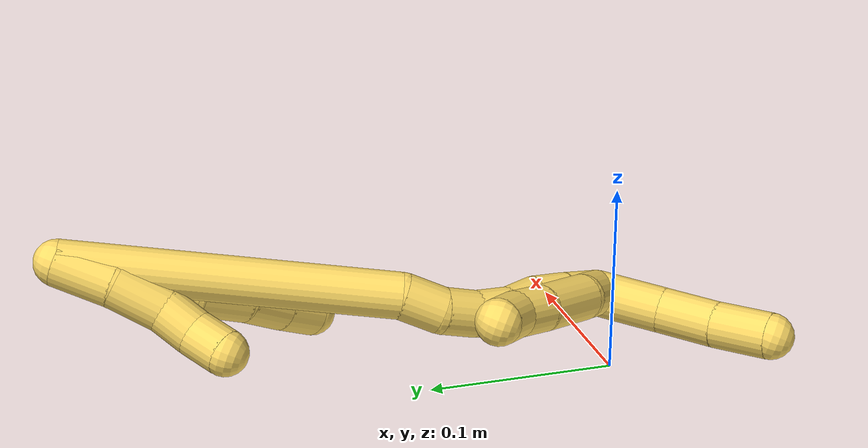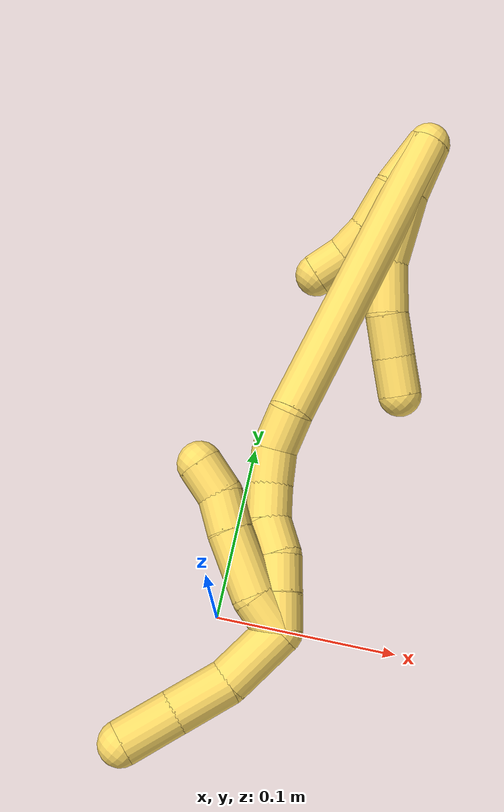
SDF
<sdf version="1.7">
 <world name="default">
  <model name="5">
   <static>0</static>
   <link name="5">
    <collision name="collision-cylinder-e_1_2_8">
     <pose>0.000635 -0.005181 -0.01552 2.81939 0.038787 0.237582</pose>
     <geometry><cylinder><radius>0.0125</radius><length>0.032749</length></cylinder></geometry>
     <surface>
      <friction><ode><mu>1.16</mu><mu2>1.16</mu2><slip1>0</slip1><slip2>0</slip2></ode></friction>
      <contact><ode><kp>1e+06</kp><kd>1</kd><max_vel>0</max_vel><min_depth>0.001</min_depth></ode></contact>
     </surface>
    </collision>
    <visual name="visual-cylinder-e_1_2_8">
     <pose>0.000635 -0.005181 -0.01552 2.81939 0.038787 0.237582</pose>
     <geometry><cylinder><radius>0.0125</radius><length>0.032749</length></cylinder></geometry>
     <material><ambient>1 0.858824 0.4 1</ambient></material>
    </visual>
    <collision name="collision-cylinder-e_2_8_9">
     <pose>0.006474 -0.016543 -0.049831 2.82379 0.257251 1.35811</pose>
     <geometry><cylinder><radius>0.0125</radius><length>0.040907</length></cylinder></geometry>
     <surface>
      <friction><ode><mu>1.16</mu><mu2>1.16</mu2><slip1>0</slip1><slip2>0</slip2></ode></friction>
      <contact><ode><kp>1e+06</kp><kd>1</kd><max_vel>0</max_vel><min_depth>0.001</min_depth></ode></contact>
     </surface>
    </collision>
    <visual name="visual-cylinder-e_2_8_9">
     <pose>0.006474 -0.016543 -0.049831 2.82379 0.257251 1.35811</pose>
     <geometry><cylinder><radius>0.0125</radius><length>0.040907</length></cylinder></geometry>
     <material><ambient>1 0.858824 0.4 1</ambient></material>
    </visual>
    <collision name="collision-cylinder-e_3_9_10">
     <pose>0.017271 -0.030422 -0.079689 2.53395 0.393246 1.132</pose>
     <geometry><cylinder><radius>0.0125</radius><length>0.029192</length></cylinder></geometry>
     <surface>
      <friction><ode><mu>1.16</mu><mu2>1.16</mu2><slip1>0</slip1><slip2>0</slip2></ode></friction>
      <contact><ode><kp>1e+06</kp><kd>1</kd><max_vel>0</max_vel><min_depth>0.001</min_depth></ode></contact>
     </surface>
    </collision>
    <visual name="visual-cylinder-e_3_9_10">
     <pose>0.017271 -0.030422 -0.079689 2.53395 0.393246 1.132</pose>
     <geometry><cylinder><radius>0.0125</radius><length>0.029192</length></cylinder></geometry>
     <material><ambient>1 0.858824 0.4 1</ambient></material>
    </visual>
    <collision name="collision-cylinder-e_4_10_11">
     <pose>0.029569 -0.044636 -0.098919 2.46772 0.570733 1.39439</pose>
     <geometry><cylinder><radius>0.0125</radius><length>0.024822</length></cylinder></geometry>
     <surface>
      <friction><ode><mu>1.16</mu><mu2>1.16</mu2><slip1>0</slip1><slip2>0</slip2></ode></friction>
      <contact><ode><kp>1e+06</kp><kd>1</kd><max_vel>0</max_vel><min_depth>0.001</min_depth></ode></contact>
     </surface>
    </collision>
    <visual name="visual-cylinder-e_4_10_11">
     <pose>0.029569 -0.044636 -0.098919 2.46772 0.570733 1.39439</pose>
     <geometry><cylinder><radius>0.0125</radius><length>0.024822</length></cylinder></geometry>
     <material><ambient>1 0.858824 0.4 1</ambient></material>
    </visual>
    <collision name="collision-cylinder-e_5_11_6">
     <pose>0.042033 -0.057381 -0.114339 2.43252 0.542002 1.28771</pose>
     <geometry><cylinder><radius>0.0125</radius><length>0.022329</length></cylinder></geometry>
     <surface>
      <friction><ode><mu>1.16</mu><mu2>1.16</mu2><slip1>0</slip1><slip2>0</slip2></ode></friction>
      <contact><ode><kp>1e+06</kp><kd>1</kd><max_vel>0</max_vel><min_depth>0.001</min_depth></ode></contact>
     </surface>
    </collision>
    <visual name="visual-cylinder-e_5_11_6">
     <pose>0.042033 -0.057381 -0.114339 2.43252 0.542002 1.28771</pose>
     <geometry><cylinder><radius>0.0125</radius><length>0.022329</length></cylinder></geometry>
     <material><ambient>1 0.858824 0.4 1</ambient></material>
    </visual>
    <collision name="collision-cylinder-e_1_2_12">
     <pose>0.000253 -0.000469 -0.015768 3.11184 0.016066 0.990115</pose>
     <geometry><cylinder><radius>0.0125</radius><length>0.031555</length></cylinder></geometry>
     <surface>
      <friction><ode><mu>1.16</mu><mu2>1.16</mu2><slip1>0</slip1><slip2>0</slip2></ode></friction>
      <contact><ode><kp>1e+06</kp><kd>1</kd><max_vel>0</max_vel><min_depth>0.001</min_depth></ode></contact>
     </surface>
    </collision>
    <visual name="visual-cylinder-e_1_2_12">
     <pose>0.000253 -0.000469 -0.015768 3.11184 0.016066 0.990115</pose>
     <geometry><cylinder><radius>0.0125</radius><length>0.031555</length></cylinder></geometry>
     <material><ambient>1 0.858824 0.4 1</ambient></material>
    </visual>
    <collision name="collision-cylinder-e_2_12_13">
     <pose>0.003302 -0.001362 -0.045419 3.11113 0.198574 2.83812</pose>
     <geometry><cylinder><radius>0.0125</radius><length>0.028334</length></cylinder></geometry>
     <surface>
      <friction><ode><mu>1.16</mu><mu2>1.16</mu2><slip1>0</slip1><slip2>0</slip2></ode></friction>
      <contact><ode><kp>1e+06</kp><kd>1</kd><max_vel>0</max_vel><min_depth>0.001</min_depth></ode></contact>
     </surface>
    </collision>
    <visual name="visual-cylinder-e_2_12_13">
     <pose>0.003302 -0.001362 -0.045419 3.11113 0.198574 2.83812</pose>
     <geometry><cylinder><radius>0.0125</radius><length>0.028334</length></cylinder></geometry>
     <material><ambient>1 0.858824 0.4 1</ambient></material>
    </visual>
    <collision name="collision-cylinder-e_3_13_14">
     <pose>0.007519 0.000533 -0.068958 -2.90607 0.142286 -1.08429</pose>
     <geometry><cylinder><radius>0.0125</radius><length>0.020064</length></cylinder></geometry>
     <surface>
      <friction><ode><mu>1.16</mu><mu2>1.16</mu2><slip1>0</slip1><slip2>0</slip2></ode></friction>
      <contact><ode><kp>1e+06</kp><kd>1</kd><max_vel>0</max_vel><min_depth>0.001</min_depth></ode></contact>
     </surface>
    </collision>
    <visual name="visual-cylinder-e_3_13_14">
     <pose>0.007519 0.000533 -0.068958 -2.90607 0.142286 -1.08429</pose>
     <geometry><cylinder><radius>0.0125</radius><length>0.020064</length></cylinder></geometry>
     <material><ambient>1 0.858824 0.4 1</ambient></material>
    </visual>
    <collision name="collision-cylinder-e_4_14_5">
     <pose>0.007729 0.005739 -0.088136 -2.84702 -0.121245 0.776679</pose>
     <geometry><cylinder><radius>0.0125</radius><length>0.020047</length></cylinder></geometry>
     <surface>
      <friction><ode><mu>1.16</mu><mu2>1.16</mu2><slip1>0</slip1><slip2>0</slip2></ode></friction>
      <contact><ode><kp>1e+06</kp><kd>1</kd><max_vel>0</max_vel><min_depth>0.001</min_depth></ode></contact>
     </surface>
    </collision>
    <visual name="visual-cylinder-e_4_14_5">
     <pose>0.007729 0.005739 -0.088136 -2.84702 -0.121245 0.776679</pose>
     <geometry><cylinder><radius>0.0125</radius><length>0.020047</length></cylinder></geometry>
     <material><ambient>1 0.858824 0.4 1</ambient></material>
    </visual>
    <collision name="collision-cylinder-e_1_2_15">
     <pose>-0.003896 -0.027531 -0.084296 2.82591 -0.04391 -0.274194</pose>
     <geometry><cylinder><radius>0.0125</radius><length>0.177526</length></cylinder></geometry>
     <surface>
      <friction><ode><mu>1.16</mu><mu2>1.16</mu2><slip1>0</slip1><slip2>0</slip2></ode></friction>
      <contact><ode><kp>1e+06</kp><kd>1</kd><max_vel>0</max_vel><min_depth>0.001</min_depth></ode></contact>
     </surface>
    </collision>
    <visual name="visual-cylinder-e_1_2_15">
     <pose>-0.003896 -0.027531 -0.084296 2.82591 -0.04391 -0.274194</pose>
     <geometry><cylinder><radius>0.0125</radius><length>0.177526</length></cylinder></geometry>
     <material><ambient>1 0.858824 0.4 1</ambient></material>
    </visual>
    <collision name="collision-cylinder-e_2_15_16">
     <pose>-0.005343 -0.057101 -0.179334 2.95405 0.22043 1.73278</pose>
     <geometry><cylinder><radius>0.0125</radius><length>0.022412</length></cylinder></geometry>
     <surface>
      <friction><ode><mu>1.16</mu><mu2>1.16</mu2><slip1>0</slip1><slip2>0</slip2></ode></friction>
      <contact><ode><kp>1e+06</kp><kd>1</kd><max_vel>0</max_vel><min_depth>0.001</min_depth></ode></contact>
     </surface>
    </collision>
    <visual name="visual-cylinder-e_2_15_16">
     <pose>-0.005343 -0.057101 -0.179334 2.95405 0.22043 1.73278</pose>
     <geometry><cylinder><radius>0.0125</radius><length>0.022412</length></cylinder></geometry>
     <material><ambient>1 0.858824 0.4 1</ambient></material>
    </visual>
    <collision name="collision-cylinder-e_3_16_17">
     <pose>-0.000389 -0.064096 -0.198405 2.60471 0.252779 0.865451</pose>
     <geometry><cylinder><radius>0.0125</radius><length>0.020018</length></cylinder></geometry>
     <surface>
      <friction><ode><mu>1.16</mu><mu2>1.16</mu2><slip1>0</slip1><slip2>0</slip2></ode></friction>
      <contact><ode><kp>1e+06</kp><kd>1</kd><max_vel>0</max_vel><min_depth>0.001</min_depth></ode></contact>
     </surface>
    </collision>
    <visual name="visual-cylinder-e_3_16_17">
     <pose>-0.000389 -0.064096 -0.198405 2.60471 0.252779 0.865451</pose>
     <geometry><cylinder><radius>0.0125</radius><length>0.020018</length></cylinder></geometry>
     <material><ambient>1 0.858824 0.4 1</ambient></material>
    </visual>
    <collision name="collision-cylinder-e_4_17_18">
     <pose>0.003544 -0.07539 -0.214345 2.44733 0.143319 0.39174</pose>
     <geometry><cylinder><radius>0.0125</radius><length>0.020017</length></cylinder></geometry>
     <surface>
      <friction><ode><mu>1.16</mu><mu2>1.16</mu2><slip1>0</slip1><slip2>0</slip2></ode></friction>
      <contact><ode><kp>1e+06</kp><kd>1</kd><max_vel>0</max_vel><min_depth>0.001</min_depth></ode></contact>
     </surface>
    </collision>
    <visual name="visual-cylinder-e_4_17_18">
     <pose>0.003544 -0.07539 -0.214345 2.44733 0.143319 0.39174</pose>
     <geometry><cylinder><radius>0.0125</radius><length>0.020017</length></cylinder></geometry>
     <material><ambient>1 0.858824 0.4 1</ambient></material>
    </visual>
    <collision name="collision-cylinder-e_5_18_19">
     <pose>0.007323 -0.090083 -0.226931 2.10768 0.237167 0.413149</pose>
     <geometry><cylinder><radius>0.0125</radius><length>0.020005</length></cylinder></geometry>
     <surface>
      <friction><ode><mu>1.16</mu><mu2>1.16</mu2><slip1>0</slip1><slip2>0</slip2></ode></friction>
      <contact><ode><kp>1e+06</kp><kd>1</kd><max_vel>0</max_vel><min_depth>0.001</min_depth></ode></contact>
     </surface>
    </collision>
    <visual name="visual-cylinder-e_5_18_19">
     <pose>0.007323 -0.090083 -0.226931 2.10768 0.237167 0.413149</pose>
     <geometry><cylinder><radius>0.0125</radius><length>0.020005</length></cylinder></geometry>
     <material><ambient>1 0.858824 0.4 1</ambient></material>
    </visual>
    <collision name="collision-cylinder-e_6_19_20">
     <pose>0.011532 -0.105023 -0.239197 2.40713 0.186908 0.477984</pose>
     <geometry><cylinder><radius>0.0125</radius><length>0.020003</length></cylinder></geometry>
     <surface>
      <friction><ode><mu>1.16</mu><mu2>1.16</mu2><slip1>0</slip1><slip2>0</slip2></ode></friction>
      <contact><ode><kp>1e+06</kp><kd>1</kd><max_vel>0</max_vel><min_depth>0.001</min_depth></ode></contact>
     </surface>
    </collision>
    <visual name="visual-cylinder-e_6_19_20">
     <pose>0.011532 -0.105023 -0.239197 2.40713 0.186908 0.477984</pose>
     <geometry><cylinder><radius>0.0125</radius><length>0.020003</length></cylinder></geometry>
     <material><ambient>1 0.858824 0.4 1</ambient></material>
    </visual>
    <collision name="collision-cylinder-e_7_20_1">
     <pose>0.015498 -0.117955 -0.25394 2.43604 0.21216 0.563052</pose>
     <geometry><cylinder><radius>0.0125</radius><length>0.020019</length></cylinder></geometry>
     <surface>
      <friction><ode><mu>1.16</mu><mu2>1.16</mu2><slip1>0</slip1><slip2>0</slip2></ode></friction>
      <contact><ode><kp>1e+06</kp><kd>1</kd><max_vel>0</max_vel><min_depth>0.001</min_depth></ode></contact>
     </surface>
    </collision>
    <visual name="visual-cylinder-e_7_20_1">
     <pose>0.015498 -0.117955 -0.25394 2.43604 0.21216 0.563052</pose>
     <geometry><cylinder><radius>0.0125</radius><length>0.020019</length></cylinder></geometry>
     <material><ambient>1 0.858824 0.4 1</ambient></material>
    </visual>
    <collision name="collision-cylinder-e_1_1_21">
     <pose>0.014115 -0.124151 -0.279755 -3.13349 -0.187795 3.05564</pose>
     <geometry><cylinder><radius>0.0125</radius><length>0.03739</length></cylinder></geometry>
     <surface>
      <friction><ode><mu>1.16</mu><mu2>1.16</mu2><slip1>0</slip1><slip2>0</slip2></ode></friction>
      <contact><ode><kp>1e+06</kp><kd>1</kd><max_vel>0</max_vel><min_depth>0.001</min_depth></ode></contact>
     </surface>
    </collision>
    <visual name="visual-cylinder-e_1_1_21">
     <pose>0.014115 -0.124151 -0.279755 -3.13349 -0.187795 3.05564</pose>
     <geometry><cylinder><radius>0.0125</radius><length>0.03739</length></cylinder></geometry>
     <material><ambient>1 0.858824 0.4 1</ambient></material>
    </visual>
    <collision name="collision-cylinder-e_2_21_22">
     <pose>0.004758 -0.121359 -0.312643 -2.96154 -0.378291 2.26034</pose>
     <geometry><cylinder><radius>0.0125</radius><length>0.03177</length></cylinder></geometry>
     <surface>
      <friction><ode><mu>1.16</mu><mu2>1.16</mu2><slip1>0</slip1><slip2>0</slip2></ode></friction>
      <contact><ode><kp>1e+06</kp><kd>1</kd><max_vel>0</max_vel><min_depth>0.001</min_depth></ode></contact>
     </surface>
    </collision>
    <visual name="visual-cylinder-e_2_21_22">
     <pose>0.004758 -0.121359 -0.312643 -2.96154 -0.378291 2.26034</pose>
     <geometry><cylinder><radius>0.0125</radius><length>0.03177</length></cylinder></geometry>
     <material><ambient>1 0.858824 0.4 1</ambient></material>
    </visual>
    <collision name="collision-cylinder-e_3_22_4">
     <pose>-0.007437 -0.116603 -0.341069 -2.99081 -0.422877 2.46484</pose>
     <geometry><cylinder><radius>0.0125</radius><length>0.03084</length></cylinder></geometry>
     <surface>
      <friction><ode><mu>1.16</mu><mu2>1.16</mu2><slip1>0</slip1><slip2>0</slip2></ode></friction>
      <contact><ode><kp>1e+06</kp><kd>1</kd><max_vel>0</max_vel><min_depth>0.001</min_depth></ode></contact>
     </surface>
    </collision>
    <visual name="visual-cylinder-e_3_22_4">
     <pose>-0.007437 -0.116603 -0.341069 -2.99081 -0.422877 2.46484</pose>
     <geometry><cylinder><radius>0.0125</radius><length>0.03084</length></cylinder></geometry>
     <material><ambient>1 0.858824 0.4 1</ambient></material>
    </visual>
    <collision name="collision-cylinder-e_1_1_23">
     <pose>0.010844 -0.11575 -0.258409 -1.23546 -0.64142 0.463535</pose>
     <geometry><cylinder><radius>0.0125</radius><length>0.022601</length></cylinder></geometry>
     <surface>
      <friction><ode><mu>1.16</mu><mu2>1.16</mu2><slip1>0</slip1><slip2>0</slip2></ode></friction>
      <contact><ode><kp>1e+06</kp><kd>1</kd><max_vel>0</max_vel><min_depth>0.001</min_depth></ode></contact>
     </surface>
    </collision>
    <visual name="visual-cylinder-e_1_1_23">
     <pose>0.010844 -0.11575 -0.258409 -1.23546 -0.64142 0.463535</pose>
     <geometry><cylinder><radius>0.0125</radius><length>0.022601</length></cylinder></geometry>
     <material><ambient>1 0.858824 0.4 1</ambient></material>
    </visual>
    <collision name="collision-cylinder-e_2_23_24">
     <pose>-0.003392 -0.092882 -0.246805 -1.02865 -0.420527 0.240026</pose>
     <geometry><cylinder><radius>0.0125</radius><length>0.036621</length></cylinder></geometry>
     <surface>
      <friction><ode><mu>1.16</mu><mu2>1.16</mu2><slip1>0</slip1><slip2>0</slip2></ode></friction>
      <contact><ode><kp>1e+06</kp><kd>1</kd><max_vel>0</max_vel><min_depth>0.001</min_depth></ode></contact>
     </surface>
    </collision>
    <visual name="visual-cylinder-e_2_23_24">
     <pose>-0.003392 -0.092882 -0.246805 -1.02865 -0.420527 0.240026</pose>
     <geometry><cylinder><radius>0.0125</radius><length>0.036621</length></cylinder></geometry>
     <material><ambient>1 0.858824 0.4 1</ambient></material>
    </visual>
    <collision name="collision-cylinder-e_3_24_25">
     <pose>-0.01449 -0.070714 -0.232491 -0.943591 -0.357583 0.183897</pose>
     <geometry><cylinder><radius>0.0125</radius><length>0.0207</length></cylinder></geometry>
     <surface>
      <friction><ode><mu>1.16</mu><mu2>1.16</mu2><slip1>0</slip1><slip2>0</slip2></ode></friction>
      <contact><ode><kp>1e+06</kp><kd>1</kd><max_vel>0</max_vel><min_depth>0.001</min_depth></ode></contact>
     </surface>
    </collision>
    <visual name="visual-cylinder-e_3_24_25">
     <pose>-0.01449 -0.070714 -0.232491 -0.943591 -0.357583 0.183897</pose>
     <geometry><cylinder><radius>0.0125</radius><length>0.0207</length></cylinder></geometry>
     <material><ambient>1 0.858824 0.4 1</ambient></material>
    </visual>
    <collision name="collision-cylinder-e_4_25_3">
     <pose>-0.023351 -0.054762 -0.224024 -1.24067 -0.548929 0.397018</pose>
     <geometry><cylinder><radius>0.0125</radius><length>0.020079</length></cylinder></geometry>
     <surface>
      <friction><ode><mu>1.16</mu><mu2>1.16</mu2><slip1>0</slip1><slip2>0</slip2></ode></friction>
      <contact><ode><kp>1e+06</kp><kd>1</kd><max_vel>0</max_vel><min_depth>0.001</min_depth></ode></contact>
     </surface>
    </collision>
    <visual name="visual-cylinder-e_4_25_3">
     <pose>-0.023351 -0.054762 -0.224024 -1.24067 -0.548929 0.397018</pose>
     <geometry><cylinder><radius>0.0125</radius><length>0.020079</length></cylinder></geometry>
     <material><ambient>1 0.858824 0.4 1</ambient></material>
    </visual>
    <collision name="collision-sphere-3">
     <pose>-0.028589 -0.04666 -0.221248 0 -0 0</pose>
     <geometry><sphere><radius>0.0125</radius></sphere></geometry>
     <surface>
      <friction><ode><mu>1.16</mu><mu2>1.16</mu2><slip1>0</slip1><slip2>0</slip2></ode></friction>
      <contact><ode><kp>1e+06</kp><kd>1</kd><max_vel>0</max_vel><min_depth>0.001</min_depth></ode></contact>
     </surface>
    </collision>
    <visual name="visual-sphere-3">
     <pose>-0.028589 -0.04666 -0.221248 0 -0 0</pose>
     <geometry><sphere><radius>0.0125</radius></sphere></geometry>
     <material><ambient>1 0.858824 0.4 1</ambient></material>
    </visual>
    <collision name="collision-sphere-25">
     <pose>-0.018112 -0.062864 -0.226801 0 -0 0</pose>
     <geometry><sphere><radius>0.0125</radius></sphere></geometry>
     <surface>
      <friction><ode><mu>1.16</mu><mu2>1.16</mu2><slip1>0</slip1><slip2>0</slip2></ode></friction>
      <contact><ode><kp>1e+06</kp><kd>1</kd><max_vel>0</max_vel><min_depth>0.001</min_depth></ode></contact>
     </surface>
    </collision>
    <visual name="visual-sphere-25">
     <pose>-0.018112 -0.062864 -0.226801 0 -0 0</pose>
     <geometry><sphere><radius>0.0125</radius></sphere></geometry>
     <material><ambient>1 0.858824 0.4 1</ambient></material>
    </visual>
    <collision name="collision-sphere-24">
     <pose>-0.010867 -0.078564 -0.238181 0 -0 0</pose>
     <geometry><sphere><radius>0.0125</radius></sphere></geometry>
     <surface>
      <friction><ode><mu>1.16</mu><mu2>1.16</mu2><slip1>0</slip1><slip2>0</slip2></ode></friction>
      <contact><ode><kp>1e+06</kp><kd>1</kd><max_vel>0</max_vel><min_depth>0.001</min_depth></ode></contact>
     </surface>
    </collision>
    <visual name="visual-sphere-24">
     <pose>-0.010867 -0.078564 -0.238181 0 -0 0</pose>
     <geometry><sphere><radius>0.0125</radius></sphere></geometry>
     <material><ambient>1 0.858824 0.4 1</ambient></material>
    </visual>
    <collision name="collision-sphere-23">
     <pose>0.004083 -0.1072 -0.25543 0 -0 0</pose>
     <geometry><sphere><radius>0.0125</radius></sphere></geometry>
     <surface>
      <friction><ode><mu>1.16</mu><mu2>1.16</mu2><slip1>0</slip1><slip2>0</slip2></ode></friction>
      <contact><ode><kp>1e+06</kp><kd>1</kd><max_vel>0</max_vel><min_depth>0.001</min_depth></ode></contact>
     </surface>
    </collision>
    <visual name="visual-sphere-23">
     <pose>0.004083 -0.1072 -0.25543 0 -0 0</pose>
     <geometry><sphere><radius>0.0125</radius></sphere></geometry>
     <material><ambient>1 0.858824 0.4 1</ambient></material>
    </visual>
    <collision name="collision-sphere-4">
     <pose>-0.013765 -0.114491 -0.354971 0 -0 0</pose>
     <geometry><sphere><radius>0.0125</radius></sphere></geometry>
     <surface>
      <friction><ode><mu>1.16</mu><mu2>1.16</mu2><slip1>0</slip1><slip2>0</slip2></ode></friction>
      <contact><ode><kp>1e+06</kp><kd>1</kd><max_vel>0</max_vel><min_depth>0.001</min_depth></ode></contact>
     </surface>
    </collision>
    <visual name="visual-sphere-4">
     <pose>-0.013765 -0.114491 -0.354971 0 -0 0</pose>
     <geometry><sphere><radius>0.0125</radius></sphere></geometry>
     <material><ambient>1 0.858824 0.4 1</ambient></material>
    </visual>
    <collision name="collision-sphere-22">
     <pose>-0.001108 -0.118716 -0.327167 0 -0 0</pose>
     <geometry><sphere><radius>0.0125</radius></sphere></geometry>
     <surface>
      <friction><ode><mu>1.16</mu><mu2>1.16</mu2><slip1>0</slip1><slip2>0</slip2></ode></friction>
      <contact><ode><kp>1e+06</kp><kd>1</kd><max_vel>0</max_vel><min_depth>0.001</min_depth></ode></contact>
     </surface>
    </collision>
    <visual name="visual-sphere-22">
     <pose>-0.001108 -0.118716 -0.327167 0 -0 0</pose>
     <geometry><sphere><radius>0.0125</radius></sphere></geometry>
     <material><ambient>1 0.858824 0.4 1</ambient></material>
    </visual>
    <collision name="collision-sphere-21">
     <pose>0.010625 -0.124003 -0.29812 0 -0 0</pose>
     <geometry><sphere><radius>0.0125</radius></sphere></geometry>
     <surface>
      <friction><ode><mu>1.16</mu><mu2>1.16</mu2><slip1>0</slip1><slip2>0</slip2></ode></friction>
      <contact><ode><kp>1e+06</kp><kd>1</kd><max_vel>0</max_vel><min_depth>0.001</min_depth></ode></contact>
     </surface>
    </collision>
    <visual name="visual-sphere-21">
     <pose>0.010625 -0.124003 -0.29812 0 -0 0</pose>
     <geometry><sphere><radius>0.0125</radius></sphere></geometry>
     <material><ambient>1 0.858824 0.4 1</ambient></material>
    </visual>
    <collision name="collision-sphere-1">
     <pose>0.017606 -0.1243 -0.261389 0 -0 0</pose>
     <geometry><sphere><radius>0.0125</radius></sphere></geometry>
     <surface>
      <friction><ode><mu>1.16</mu><mu2>1.16</mu2><slip1>0</slip1><slip2>0</slip2></ode></friction>
      <contact><ode><kp>1e+06</kp><kd>1</kd><max_vel>0</max_vel><min_depth>0.001</min_depth></ode></contact>
     </surface>
    </collision>
    <visual name="visual-sphere-1">
     <pose>0.017606 -0.1243 -0.261389 0 -0 0</pose>
     <geometry><sphere><radius>0.0125</radius></sphere></geometry>
     <material><ambient>1 0.858824 0.4 1</ambient></material>
    </visual>
    <collision name="collision-sphere-6">
     <pose>0.047793 -0.063609 -0.121598 0 -0 0</pose>
     <geometry><sphere><radius>0.0125</radius></sphere></geometry>
     <surface>
      <friction><ode><mu>1.16</mu><mu2>1.16</mu2><slip1>0</slip1><slip2>0</slip2></ode></friction>
      <contact><ode><kp>1e+06</kp><kd>1</kd><max_vel>0</max_vel><min_depth>0.001</min_depth></ode></contact>
     </surface>
    </collision>
    <visual name="visual-sphere-6">
     <pose>0.047793 -0.063609 -0.121598 0 -0 0</pose>
     <geometry><sphere><radius>0.0125</radius></sphere></geometry>
     <material><ambient>1 0.858824 0.4 1</ambient></material>
    </visual>
    <collision name="collision-sphere-11">
     <pose>0.036274 -0.051153 -0.10708 0 -0 0</pose>
     <geometry><sphere><radius>0.0125</radius></sphere></geometry>
     <surface>
      <friction><ode><mu>1.16</mu><mu2>1.16</mu2><slip1>0</slip1><slip2>0</slip2></ode></friction>
      <contact><ode><kp>1e+06</kp><kd>1</kd><max_vel>0</max_vel><min_depth>0.001</min_depth></ode></contact>
     </surface>
    </collision>
    <visual name="visual-sphere-11">
     <pose>0.036274 -0.051153 -0.10708 0 -0 0</pose>
     <geometry><sphere><radius>0.0125</radius></sphere></geometry>
     <material><ambient>1 0.858824 0.4 1</ambient></material>
    </visual>
    <collision name="collision-sphere-10">
     <pose>0.022864 -0.038119 -0.090758 0 -0 0</pose>
     <geometry><sphere><radius>0.0125</radius></sphere></geometry>
     <surface>
      <friction><ode><mu>1.16</mu><mu2>1.16</mu2><slip1>0</slip1><slip2>0</slip2></ode></friction>
      <contact><ode><kp>1e+06</kp><kd>1</kd><max_vel>0</max_vel><min_depth>0.001</min_depth></ode></contact>
     </surface>
    </collision>
    <visual name="visual-sphere-10">
     <pose>0.022864 -0.038119 -0.090758 0 -0 0</pose>
     <geometry><sphere><radius>0.0125</radius></sphere></geometry>
     <material><ambient>1 0.858824 0.4 1</ambient></material>
    </visual>
    <collision name="collision-sphere-9">
     <pose>0.011678 -0.022724 -0.06862 0 -0 0</pose>
     <geometry><sphere><radius>0.0125</radius></sphere></geometry>
     <surface>
      <friction><ode><mu>1.16</mu><mu2>1.16</mu2><slip1>0</slip1><slip2>0</slip2></ode></friction>
      <contact><ode><kp>1e+06</kp><kd>1</kd><max_vel>0</max_vel><min_depth>0.001</min_depth></ode></contact>
     </surface>
    </collision>
    <visual name="visual-sphere-9">
     <pose>0.011678 -0.022724 -0.06862 0 -0 0</pose>
     <geometry><sphere><radius>0.0125</radius></sphere></geometry>
     <material><ambient>1 0.858824 0.4 1</ambient></material>
    </visual>
    <collision name="collision-sphere-2">
     <geometry><sphere><radius>0.0125</radius></sphere></geometry>
     <surface>
      <friction><ode><mu>1.16</mu><mu2>1.16</mu2><slip1>0</slip1><slip2>0</slip2></ode></friction>
      <contact><ode><kp>1e+06</kp><kd>1</kd><max_vel>0</max_vel><min_depth>0.001</min_depth></ode></contact>
     </surface>
    </collision>
    <visual name="visual-sphere-2">
     <geometry><sphere><radius>0.0125</radius></sphere></geometry>
     <material><ambient>1 0.858824 0.4 1</ambient></material>
    </visual>
    <collision name="collision-sphere-19">
     <pose>0.009673 -0.098437 -0.231903 0 -0 0</pose>
     <geometry><sphere><radius>0.0125</radius></sphere></geometry>
     <surface>
      <friction><ode><mu>1.16</mu><mu2>1.16</mu2><slip1>0</slip1><slip2>0</slip2></ode></friction>
      <contact><ode><kp>1e+06</kp><kd>1</kd><max_vel>0</max_vel><min_depth>0.001</min_depth></ode></contact>
     </surface>
    </collision>
    <visual name="visual-sphere-19">
     <pose>0.009673 -0.098437 -0.231903 0 -0 0</pose>
     <geometry><sphere><radius>0.0125</radius></sphere></geometry>
     <material><ambient>1 0.858824 0.4 1</ambient></material>
    </visual>
    <collision name="collision-sphere-8">
     <pose>0.00127 -0.010362 -0.031041 0 -0 0</pose>
     <geometry><sphere><radius>0.0125</radius></sphere></geometry>
     <surface>
      <friction><ode><mu>1.16</mu><mu2>1.16</mu2><slip1>0</slip1><slip2>0</slip2></ode></friction>
      <contact><ode><kp>1e+06</kp><kd>1</kd><max_vel>0</max_vel><min_depth>0.001</min_depth></ode></contact>
     </surface>
    </collision>
    <visual name="visual-sphere-8">
     <pose>0.00127 -0.010362 -0.031041 0 -0 0</pose>
     <geometry><sphere><radius>0.0125</radius></sphere></geometry>
     <material><ambient>1 0.858824 0.4 1</ambient></material>
    </visual>
    <collision name="collision-sphere-12">
     <pose>0.000507 -0.000939 -0.031537 0 -0 0</pose>
     <geometry><sphere><radius>0.0125</radius></sphere></geometry>
     <surface>
      <friction><ode><mu>1.16</mu><mu2>1.16</mu2><slip1>0</slip1><slip2>0</slip2></ode></friction>
      <contact><ode><kp>1e+06</kp><kd>1</kd><max_vel>0</max_vel><min_depth>0.001</min_depth></ode></contact>
     </surface>
    </collision>
    <visual name="visual-sphere-12">
     <pose>0.000507 -0.000939 -0.031537 0 -0 0</pose>
     <geometry><sphere><radius>0.0125</radius></sphere></geometry>
     <material><ambient>1 0.858824 0.4 1</ambient></material>
    </visual>
    <collision name="collision-sphere-13">
     <pose>0.006097 -0.001785 -0.059302 0 -0 0</pose>
     <geometry><sphere><radius>0.0125</radius></sphere></geometry>
     <surface>
      <friction><ode><mu>1.16</mu><mu2>1.16</mu2><slip1>0</slip1><slip2>0</slip2></ode></friction>
      <contact><ode><kp>1e+06</kp><kd>1</kd><max_vel>0</max_vel><min_depth>0.001</min_depth></ode></contact>
     </surface>
    </collision>
    <visual name="visual-sphere-13">
     <pose>0.006097 -0.001785 -0.059302 0 -0 0</pose>
     <geometry><sphere><radius>0.0125</radius></sphere></geometry>
     <material><ambient>1 0.858824 0.4 1</ambient></material>
    </visual>
    <collision name="collision-sphere-14">
     <pose>0.008942 0.00285 -0.078614 0 -0 0</pose>
     <geometry><sphere><radius>0.0125</radius></sphere></geometry>
     <surface>
      <friction><ode><mu>1.16</mu><mu2>1.16</mu2><slip1>0</slip1><slip2>0</slip2></ode></friction>
      <contact><ode><kp>1e+06</kp><kd>1</kd><max_vel>0</max_vel><min_depth>0.001</min_depth></ode></contact>
     </surface>
    </collision>
    <visual name="visual-sphere-14">
     <pose>0.008942 0.00285 -0.078614 0 -0 0</pose>
     <geometry><sphere><radius>0.0125</radius></sphere></geometry>
     <material><ambient>1 0.858824 0.4 1</ambient></material>
    </visual>
    <collision name="collision-sphere-5">
     <pose>0.006517 0.008627 -0.097657 0 -0 0</pose>
     <geometry><sphere><radius>0.0125</radius></sphere></geometry>
     <surface>
      <friction><ode><mu>1.16</mu><mu2>1.16</mu2><slip1>0</slip1><slip2>0</slip2></ode></friction>
      <contact><ode><kp>1e+06</kp><kd>1</kd><max_vel>0</max_vel><min_depth>0.001</min_depth></ode></contact>
     </surface>
    </collision>
    <visual name="visual-sphere-5">
     <pose>0.006517 0.008627 -0.097657 0 -0 0</pose>
     <geometry><sphere><radius>0.0125</radius></sphere></geometry>
     <material><ambient>1 0.858824 0.4 1</ambient></material>
    </visual>
    <collision name="collision-sphere-15">
     <pose>-0.007793 -0.055062 -0.168591 0 -0 0</pose>
     <geometry><sphere><radius>0.0125</radius></sphere></geometry>
     <surface>
      <friction><ode><mu>1.16</mu><mu2>1.16</mu2><slip1>0</slip1><slip2>0</slip2></ode></friction>
      <contact><ode><kp>1e+06</kp><kd>1</kd><max_vel>0</max_vel><min_depth>0.001</min_depth></ode></contact>
     </surface>
    </collision>
    <visual name="visual-sphere-15">
     <pose>-0.007793 -0.055062 -0.168591 0 -0 0</pose>
     <geometry><sphere><radius>0.0125</radius></sphere></geometry>
     <material><ambient>1 0.858824 0.4 1</ambient></material>
    </visual>
    <collision name="collision-sphere-16">
     <pose>-0.002892 -0.059139 -0.190077 0 -0 0</pose>
     <geometry><sphere><radius>0.0125</radius></sphere></geometry>
     <surface>
      <friction><ode><mu>1.16</mu><mu2>1.16</mu2><slip1>0</slip1><slip2>0</slip2></ode></friction>
      <contact><ode><kp>1e+06</kp><kd>1</kd><max_vel>0</max_vel><min_depth>0.001</min_depth></ode></contact>
     </surface>
    </collision>
    <visual name="visual-sphere-16">
     <pose>-0.002892 -0.059139 -0.190077 0 -0 0</pose>
     <geometry><sphere><radius>0.0125</radius></sphere></geometry>
     <material><ambient>1 0.858824 0.4 1</ambient></material>
    </visual>
    <collision name="collision-sphere-17">
     <pose>0.002114 -0.069052 -0.206732 0 -0 0</pose>
     <geometry><sphere><radius>0.0125</radius></sphere></geometry>
     <surface>
      <friction><ode><mu>1.16</mu><mu2>1.16</mu2><slip1>0</slip1><slip2>0</slip2></ode></friction>
      <contact><ode><kp>1e+06</kp><kd>1</kd><max_vel>0</max_vel><min_depth>0.001</min_depth></ode></contact>
     </surface>
    </collision>
    <visual name="visual-sphere-17">
     <pose>0.002114 -0.069052 -0.206732 0 -0 0</pose>
     <geometry><sphere><radius>0.0125</radius></sphere></geometry>
     <material><ambient>1 0.858824 0.4 1</ambient></material>
    </visual>
    <collision name="collision-sphere-18">
     <pose>0.004973 -0.081728 -0.221958 0 -0 0</pose>
     <geometry><sphere><radius>0.0125</radius></sphere></geometry>
     <surface>
      <friction><ode><mu>1.16</mu><mu2>1.16</mu2><slip1>0</slip1><slip2>0</slip2></ode></friction>
      <contact><ode><kp>1e+06</kp><kd>1</kd><max_vel>0</max_vel><min_depth>0.001</min_depth></ode></contact>
     </surface>
    </collision>
    <visual name="visual-sphere-18">
     <pose>0.004973 -0.081728 -0.221958 0 -0 0</pose>
     <geometry><sphere><radius>0.0125</radius></sphere></geometry>
     <material><ambient>1 0.858824 0.4 1</ambient></material>
    </visual>
    <collision name="collision-sphere-20">
     <pose>0.01339 -0.11161 -0.246491 0 -0 0</pose>
     <geometry><sphere><radius>0.0125</radius></sphere></geometry>
     <surface>
      <friction><ode><mu>1.16</mu><mu2>1.16</mu2><slip1>0</slip1><slip2>0</slip2></ode></friction>
      <contact><ode><kp>1e+06</kp><kd>1</kd><max_vel>0</max_vel><min_depth>0.001</min_depth></ode></contact>
     </surface>
    </collision>
    <visual name="visual-sphere-20">
     <pose>0.01339 -0.11161 -0.246491 0 -0 0</pose>
     <geometry><sphere><radius>0.0125</radius></sphere></geometry>
     <material><ambient>1 0.858824 0.4 1</ambient></material>
    </visual>
    <inertial>
     <pose>0.003481 -0.053266 -0.148761 0 -0 0</pose>
     <mass>0.75</mass>
     <inertia>
      <ixx>0.00037</ixx>
      <ixy>0</ixy>
      <ixz>0</ixz>
      <iyy>-0.000527</iyy>
      <iyz>0</iyz>
      <izz>0.000129</izz>
     </inertia>
    </inertial>
   </link>
   <pose>0.064126 0.280255 0.067912 -0.949463 1.03069 0.025085</pose>
  </model>
 </world>
</sdf>
